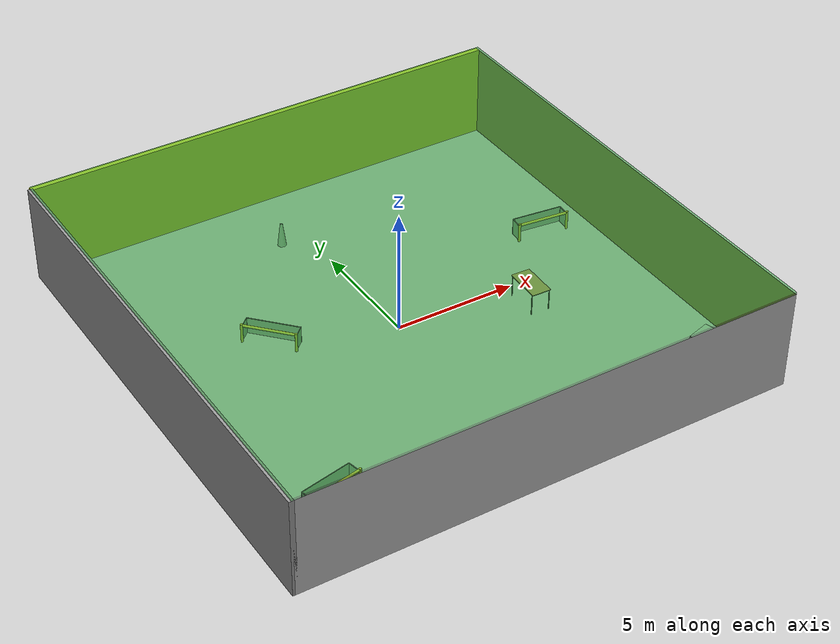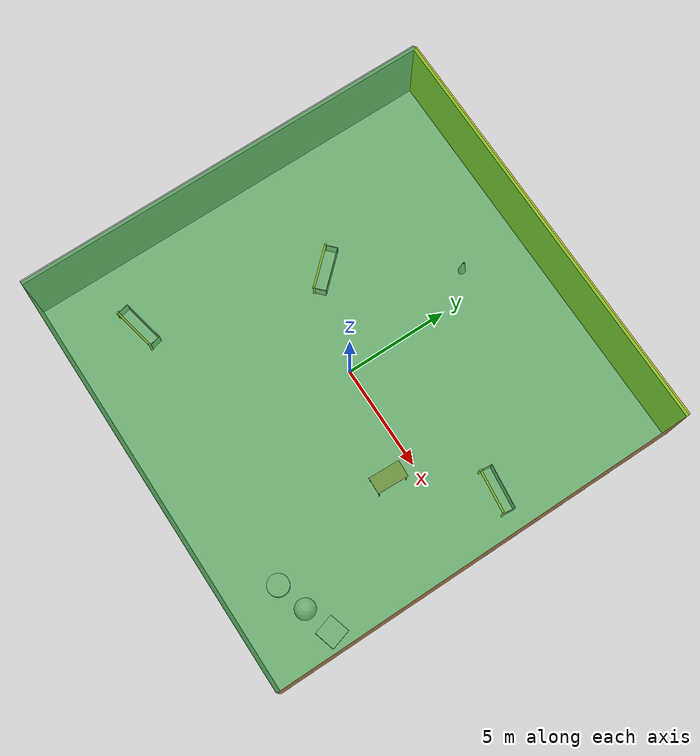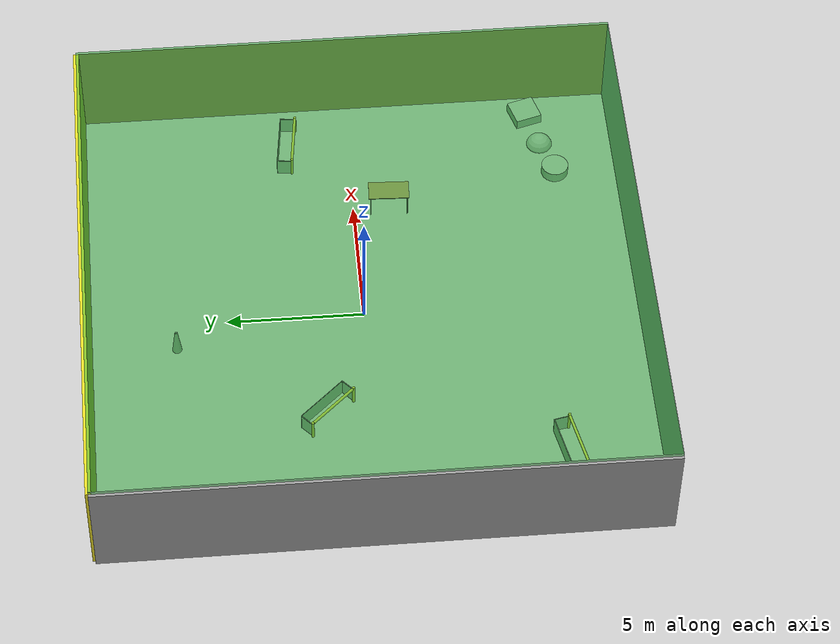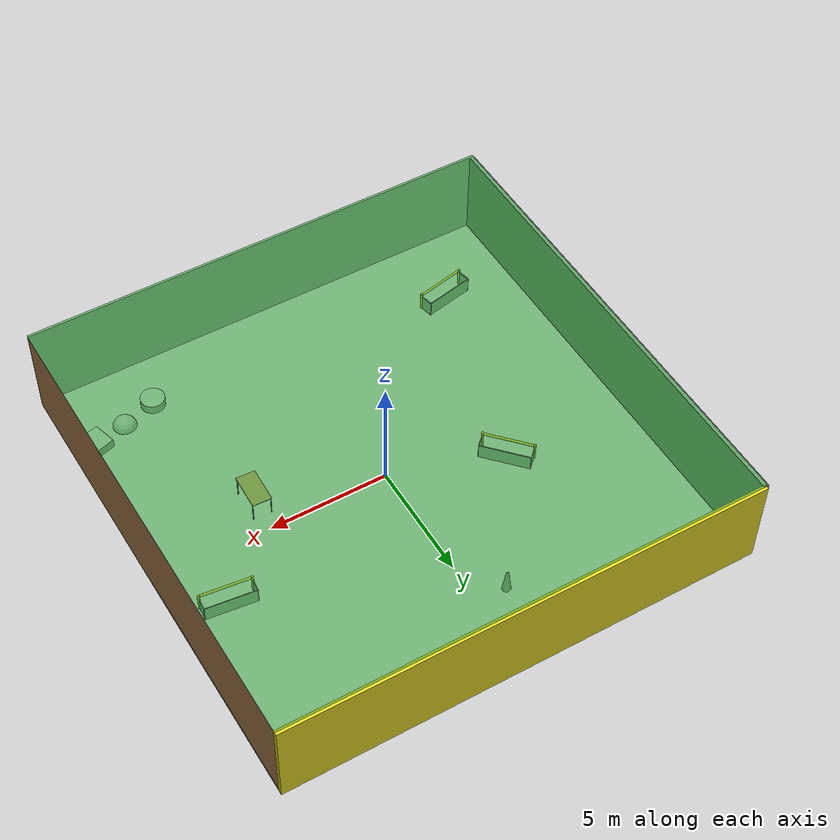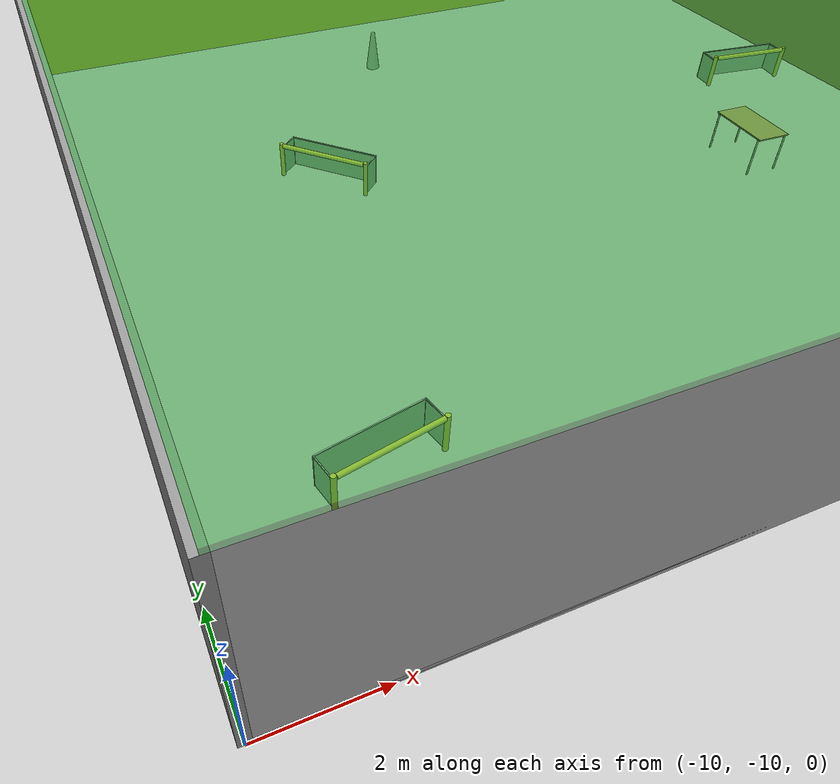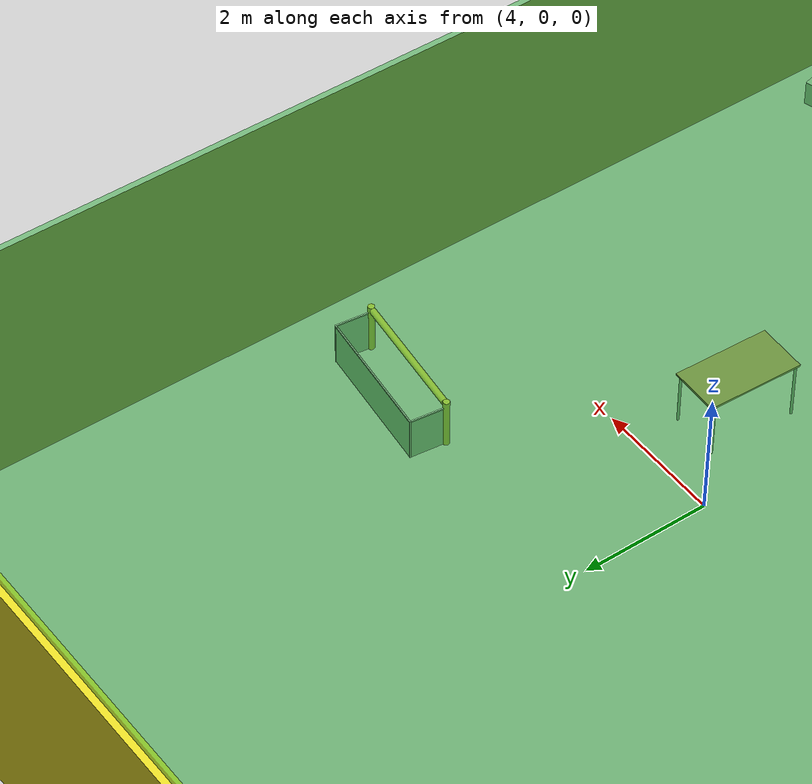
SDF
<sdf version="1.4">
 <world name="default">
  <physics type="ode">
   <max_step_size>0.001</max_step_size>
   <real_time_factor>1</real_time_factor>
   <real_time_update_rate>1000</real_time_update_rate>
   <gravity>0 0 -9.8</gravity>
  </physics>
  <scene><ambient>0.4 0.4 0.4 1</ambient><background>0.7 0.7 0.7 1</background><shadows>1</shadows></scene>
  <model name="Surrounding">
   <static>1</static>
   <link name="Ceiling">
    <collision name="Ceiling_Collision"><geometry><box><size>20 20 0.1</size></box></geometry></collision>
    <visual name="Ceiling_Visual">
     <geometry><box><size>20 20 0.1</size></box></geometry>
     <material>
      <script><uri>file://media/materials/scripts/gazebo.material</uri><name>Gazebo/GreenTransparent</name></script>
     </material>
    </visual>
    <pose>0 0 4.05 0 0 0</pose>
   </link>
   <link name="Wall_South">
    <collision name="Wall_South_Collision">
     <geometry><box><size>20 0 4</size></box></geometry>
     <pose>0 0 2 0 -0 0</pose>
    </collision>
    <visual name="Wall_South_Visual">
     <pose>0 0 2 0 -0 0</pose>
     <geometry><box><size>20 0 4</size></box></geometry>
     <material>
      <script><uri>file://media/materials/scripts/gazebo.material</uri><name>Gazebo/JointAnchor</name></script>
     </material>
    </visual>
    <velocity_decay><linear>0</linear><angular>0</angular></velocity_decay>
    <pose>0 -10 0 0 -0 0</pose>
   </link>
   <link name="Wall_East">
    <collision name="Wall_21_Collision">
     <geometry><box><size>20 0 4</size></box></geometry>
     <pose>0 0 2 0 -0 0</pose>
    </collision>
    <visual name="Wall_21_Visual">
     <pose>0 0 2 0 -0 0</pose>
     <geometry><box><size>20 0 4</size></box></geometry>
     <material>
      <script><uri>file://media/materials/scripts/gazebo.material</uri><name>Gazebo/WoodPallet</name></script>
     </material>
    </visual>
    <velocity_decay><linear>0</linear><angular>0</angular></velocity_decay>
    <pose>10 0 0 0 -0 1.5708</pose>
   </link>
   <link name="Wall_North">
    <collision name="Wall_22_Collision">
     <geometry><box><size>20 0.2 4</size></box></geometry>
     <pose>0 0 2 0 -0 0</pose>
    </collision>
    <visual name="Wall_22_Visual">
     <pose>0 0 2 0 -0 0</pose>
     <geometry><box><size>20 0.2 4</size></box></geometry>
     <material>
      <script><uri>file://media/materials/scripts/gazebo.material</uri><name>Gazebo/Yellow</name></script>
     </material>
    </visual>
    <velocity_decay><linear>0</linear><angular>0</angular></velocity_decay>
    <pose>0 10 0 0 -0 0</pose>
   </link>
   <link name="Wall_West">
    <collision name="Wall_23_Collision">
     <geometry><box><size>20 0.2 4</size></box></geometry>
     <pose>0 0 2 0 -0 0</pose>
    </collision>
    <visual name="Wall_23_Visual">
     <pose>0 0 2 0 -0 0</pose>
     <geometry><box><size>20 0.2 4</size></box></geometry>
     <material>
      <script><uri>file://media/materials/scripts/gazebo.material</uri><name>Gazebo/Grey</name></script>
     </material>
    </visual>
    <velocity_decay><linear>0</linear><angular>0</angular></velocity_decay>
    <pose>-10 0 0 0 0 -1.5708</pose>
   </link>
   <link name="Ground_link">
    <collision name="collision">
     <pose>0 0 .05 0 -0 0</pose>
     <geometry><box><size>20 20 0.1</size></box></geometry>
    </collision>
    <visual name="visual">
     <pose>0 0 .05 0 -0 0</pose>
     <geometry><box><size>20 20 0.1</size></box></geometry>
     <material>
      <script><uri>file://media/materials/scripts/gazebo.material</uri><name>Gazebo/PioneerBody</name></script>
     </material>
    </visual>
   </link>
   <static>1</static>
  </model>
  <spherical_coordinates>
   <surface_model>EARTH_WGS84</surface_model>
   <latitude_deg>0</latitude_deg>
   <longitude_deg>0</longitude_deg>
   <elevation>0</elevation>
   <heading_deg>0</heading_deg>
  </spherical_coordinates>
  <light name="lightball_0" type="diffuse">
   <diffuse>0.8 0.8 0.8 1</diffuse>
   <specular>0.2 0.2 0.2 1</specular>
   <attenuation>
    <range>100</range>
    <constant>0.7</constant>
    <linear>0.01</linear>
    <quadratic>0.001</quadratic>
   </attenuation>
   <direction>-0.5 0.1 -0.9</direction>
   <pose>-3.52107783982 4.67068443613 0.673126585062 0 0 0</pose>
  </light>
  <light name="lightball_1" type="diffuse">
   <diffuse>0.8 0.8 0.8 1</diffuse>
   <specular>0.2 0.2 0.2 1</specular>
   <attenuation>
    <range>100</range>
    <constant>0.7</constant>
    <linear>0.01</linear>
    <quadratic>0.001</quadratic>
   </attenuation>
   <direction>-0.5 0.1 -0.9</direction>
   <pose>0.487251632172 -1.93857423402 3.60547848522 0 0 0</pose>
  </light>
  <light name="lightball_2" type="diffuse">
   <diffuse>0.8 0.8 0.8 1</diffuse>
   <specular>0.2 0.2 0.2 1</specular>
   <attenuation>
    <range>100</range>
    <constant>0.7</constant>
    <linear>0.01</linear>
    <quadratic>0.001</quadratic>
   </attenuation>
   <direction>-0.5 0.1 -0.9</direction>
   <pose>5.42520902832 -1.45535243451 1.65543463159 0 0 0</pose>
  </light>
  <light name="lightball_3" type="diffuse">
   <diffuse>0.8 0.8 0.8 1</diffuse>
   <specular>0.2 0.2 0.2 1</specular>
   <attenuation>
    <range>100</range>
    <constant>0.7</constant>
    <linear>0.01</linear>
    <quadratic>0.001</quadratic>
   </attenuation>
   <direction>-0.5 0.1 -0.9</direction>
   <pose>-5.50004398047 -7.59170630841 3.19905765518 0 0 0</pose>
  </light>
  <light name="lightball_4" type="diffuse">
   <diffuse>0.8 0.8 0.8 1</diffuse>
   <specular>0.2 0.2 0.2 1</specular>
   <attenuation>
    <range>100</range>
    <constant>0.7</constant>
    <linear>0.01</linear>
    <quadratic>0.001</quadratic>
   </attenuation>
   <direction>-0.5 0.1 -0.9</direction>
   <pose>-3.63984360544 7.41672461426 2.07375372387 0 0 0</pose>
  </light>
  <light name="lightball_5" type="diffuse">
   <diffuse>0.8 0.8 0.8 1</diffuse>
   <specular>0.2 0.2 0.2 1</specular>
   <attenuation>
    <range>100</range>
    <constant>0.7</constant>
    <linear>0.01</linear>
    <quadratic>0.001</quadratic>
   </attenuation>
   <direction>-0.5 0.1 -0.9</direction>
   <pose>-1.5956341484 9.11604775637 1.33675708795 0 0 0</pose>
  </light>
  <light name="lightball_6" type="diffuse">
   <diffuse>0.8 0.8 0.8 1</diffuse>
   <specular>0.2 0.2 0.2 1</specular>
   <attenuation>
    <range>100</range>
    <constant>0.7</constant>
    <linear>0.01</linear>
    <quadratic>0.001</quadratic>
   </attenuation>
   <direction>-0.5 0.1 -0.9</direction>
   <pose>7.73583205728 6.94885926466 2.10156685542 0 0 0</pose>
  </light>
  <light name="lightball_7" type="diffuse">
   <diffuse>0.8 0.8 0.8 1</diffuse>
   <specular>0.2 0.2 0.2 1</specular>
   <attenuation>
    <range>100</range>
    <constant>0.7</constant>
    <linear>0.01</linear>
    <quadratic>0.001</quadratic>
   </attenuation>
   <direction>-0.5 0.1 -0.9</direction>
   <pose>9.10397010213 5.55789995773 3.45093133572 0 0 0</pose>
  </light>
  <light name="lightball_8" type="diffuse">
   <diffuse>0.8 0.8 0.8 1</diffuse>
   <specular>0.2 0.2 0.2 1</specular>
   <attenuation>
    <range>100</range>
    <constant>0.7</constant>
    <linear>0.01</linear>
    <quadratic>0.001</quadratic>
   </attenuation>
   <direction>-0.5 0.1 -0.9</direction>
   <pose>7.18440444279 2.54413383281 3.71070038022 0 0 0</pose>
  </light>
  <include>
   <uri>model://robocup_3Dsim_goal</uri>
   <pose>-6.74584282505 -7.02559416296 0 0 0 1.77400713536</pose>
  </include>
  <include>
   <uri>model://robocup_3Dsim_goal</uri>
   <pose>-4.67963957847 1.44921509673 0 0 0 0.744472733848</pose>
  </include>
  <include>
   <uri>model://construction_cone</uri>
   <pose>-1.1662769415 6.8475100963 0 0 0 1.10314048204</pose>
  </include>
  <include><uri>model://table</uri><pose>4.99356101136 -1.32318908454 0 0 0 1.53293512515</pose></include>
  <include>
   <uri>model://textured_shapes</uri>
   <pose>7.63192456161 -7.30128268962 0 0 0 1.85471113008</pose>
  </include>
  <include>
   <uri>model://robocup_3Dsim_goal</uri>
   <pose>7.93965311211 2.05118462458 0 0 0 1.45565646854</pose>
  </include>
 </world>
</sdf>

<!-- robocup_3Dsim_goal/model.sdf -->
<sdf version="1.5">
  <model name="robocup_3d_goal">
    <static>true</static>
    <link name="left_post">
      <pose>0 1.05 0.45 0 0 0</pose>
      <collision name="collision">
        <geometry>
          <cylinder>
            <radius>0.05</radius>
            <length>0.9</length>
          </cylinder>
        </geometry>
      </collision>
      <visual name="visual">
        <geometry>
          <cylinder>
            <radius>0.05</radius>
            <length>0.9</length>
          </cylinder>
        </geometry>
        <material>
          <script>
            <uri>file://media/materials/scripts/gazebo.material</uri>
            <name>Gazebo/ZincYellow</name>
          </script>
        </material>
      </visual>
    </link>
    <link name="left_support_horiz_lower">
      <pose>0.30 1.05 0.01 0 0 0</pose>
      <collision name="collision">
        <geometry>
          <box>
            <size>0.50 0.02 0.02</size>
          </box>
        </geometry>
      </collision>
      <visual name="visual">
        <geometry>
          <box>
            <size>0.50 0.02 0.02</size>
          </box>
        </geometry>
        <material>
          <script>
            <uri>file://media/materials/scripts/gazebo.material</uri>
            <name>Gazebo/White</name>
          </script>
        </material>
      </visual>
    </link>
    <link name="left_support_horiz_upper">
      <pose>0.30 1.05 0.79 0 0 0</pose>
      <collision name="collision">
        <geometry>
          <box>
            <size>0.50 0.02 0.02</size>
          </box>
        </geometry>
      </collision>
      <visual name="visual">
        <geometry>
          <box>
            <size>0.50 0.02 0.02</size>
          </box>
        </geometry>
        <material>
          <script>
            <uri>file://media/materials/scripts/gazebo.material</uri>
            <name>Gazebo/White</name>
          </script>
        </material>
      </visual>
    </link>
    <link name="left_support_vertical">
      <pose>0.56 1.05 0.4 0 1.5708 0</pose>
      <collision name="collision">
        <geometry>
          <box>
            <size>0.80 0.02 0.02</size>
          </box>
        </geometry>
      </collision>
      <visual name="visual">
        <geometry>
          <box>
            <size>0.80 0.02 0.02</size>
          </box>
        </geometry>
        <material>
          <script>
            <uri>file://media/materials/scripts/gazebo.material</uri>
            <name>Gazebo/White</name>
          </script>
        </material>
      </visual>
    </link>
    <link name="right_support_horiz_lower">
      <pose>0.30 -1.05 0.01 0 0 0</pose>
      <collision name="collision">
        <geometry>
          <box>
            <size>0.50 0.02 0.02</size>
          </box>
        </geometry>
      </collision>
      <visual name="visual">
        <geometry>
          <box>
            <size>0.50 0.02 0.02</size>
          </box>
        </geometry>
        <material>
          <script>
            <uri>file://media/materials/scripts/gazebo.material</uri>
            <name>Gazebo/White</name>
          </script>
        </material>
      </visual>
    </link>
    <link name="right_support_horiz_upper">
      <pose>0.30 -1.05 0.79 0 0 0</pose>
      <collision name="collision">
        <geometry>
          <box>
            <size>0.50 0.02 0.02</size>
          </box>
        </geometry>
      </collision>
      <visual name="visual">
        <geometry>
          <box>
            <size>0.50 0.02 0.02</size>
          </box>
        </geometry>
        <material>
          <script>
            <uri>file://media/materials/scripts/gazebo.material</uri>
            <name>Gazebo/White</name>
          </script>
        </material>
      </visual>
    </link>
    <link name="right_support_vertical">
      <pose>0.56 -1.05 0.4 0 1.5708 0</pose>
      <collision name="collision">
        <geometry>
          <box>
            <size>0.80 0.02 0.02</size>
          </box>
        </geometry>
      </collision>
      <visual name="visual">
        <geometry>
          <box>
            <size>0.80 0.02 0.02</size>
          </box>
        </geometry>
        <material>
          <script>
            <uri>file://media/materials/scripts/gazebo.material</uri>
            <name>Gazebo/White</name>
          </script>
        </material>
      </visual>
    </link>
    <link name="center_support_horiz_lower">
      <pose>0.56 0 0.01 0 1.5708 0</pose>
      <collision name="collision">
        <geometry>
          <box>
            <size>0.02 2.08 0.02</size>
          </box>
        </geometry>
      </collision>
      <visual name="visual">
        <geometry>
          <box>
            <size>0.02 2.08 0.02</size>
          </box>
        </geometry>
        <material>
          <script>
            <uri>file://media/materials/scripts/gazebo.material</uri>
            <name>Gazebo/White</name>
          </script>
        </material>
      </visual>
    </link>
    <link name="center_support_horiz_upper">
      <pose>0.56 0 0.79 0 1.5708 0</pose>
      <collision name="collision">
        <geometry>
          <box>
            <size>0.02 2.08 0.02</size>
          </box>
        </geometry>
      </collision>
      <visual name="visual">
        <geometry>
          <box>
            <size>0.02 2.08 0.02</size>
          </box>
        </geometry>
        <material>
          <script>
            <uri>file://media/materials/scripts/gazebo.material</uri>
            <name>Gazebo/White</name>
          </script>
        </material>
      </visual>
    </link>
    <link name="right_post">
      <pose>0 -1.05 0.45 0 0 0</pose>
      <collision name="collision">
        <geometry>
          <cylinder>
            <radius>0.05</radius>
            <length>0.9</length>
          </cylinder>
        </geometry>
      </collision>
      <visual name="visual">
        <geometry>
          <cylinder>
            <radius>0.05</radius>
            <length>0.9</length>
          </cylinder>
        </geometry>
        <material>
          <script>
            <uri>file://media/materials/scripts/gazebo.material</uri>
            <name>Gazebo/ZincYellow</name>
          </script>
        </material>
      </visual>
    </link>
    <link name="crossbar">
      <pose>0 0 0.85 1.57 1.57 0</pose>
      <collision name="collision">
        <geometry>
          <cylinder>
            <radius>0.05</radius>
            <length>2.0</length>
          </cylinder>
        </geometry>
      </collision>
      <visual name="visual">
        <geometry>
          <cylinder>
            <radius>0.05</radius>
            <length>2.0</length>
          </cylinder>
        </geometry>
        <material>
          <script>
            <uri>file://media/materials/scripts/gazebo.material</uri>
            <name>Gazebo/ZincYellow</name>
          </script>
        </material>
      </visual>
    </link>
    <link name="center_net">
      <pose>0.56 0 0.40 0 0 0</pose>
      <collision name="collision">
        <geometry>
          <box>
            <size>0.01 2.1 0.80</size>
          </box>
        </geometry>
      </collision>
      <visual name="visual">
        <geometry>
          <box>
            <size>0.01 2.1 0.80</size>
          </box>
        </geometry>
        <material>
          <script>
            <uri>model://../model_source/models/robocup09_spl_field/materials/scripts/</uri>
            <uri>model://../model_source/models/robocup09_spl_field/materials/textures/</uri>
            <name>RoboCup/Net</name>
          </script>
        </material>
      </visual>
    </link>
    <link name="left_net">
      <pose>0.30 1.05 0.40 0 0 0</pose>
      <collision name="collision">
        <geometry>
          <box>
            <size>0.50 0.01 0.76</size>
          </box>
        </geometry>
      </collision>
      <visual name="visual">
        <geometry>
          <box>
            <size>0.50 0.01 0.76</size>
          </box>
        </geometry>
        <material>
          <script>
            <uri>model://../model_source/models/robocup09_spl_field/materials/scripts/</uri>
            <uri>model://../model_source/models/robocup09_spl_field/materials/textures/</uri>
            <name>RoboCup/Net</name>
          </script>
        </material>
      </visual>
    </link>
    <link name="right_net">
      <pose>0.30 -1.05 0.40 0 0 0</pose>
      <collision name="collision">
        <geometry>
          <box>
            <size>0.50 0.01 0.76</size>
          </box>
        </geometry>
      </collision>
      <visual name="visual">
        <geometry>
          <box>
            <size>0.50 0.01 0.76</size>
          </box>
        </geometry>
        <material>
          <script>
            <uri>model://../model_source/models/robocup09_spl_field/materials/scripts/</uri>
            <uri>model://../model_source/models/robocup09_spl_field/materials/textures/</uri>
            <name>RoboCup/Net</name>
          </script>
        </material>
      </visual>
    </link>
  </model>
</sdf>

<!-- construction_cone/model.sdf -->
<sdf version="1.5">
  <model name="Construction Cone">
    <link name="link">
      <collision name="collision">
        <geometry>
          <mesh>
            <scale>10 10 10</scale>
            <uri>file://isr-testbed/construction_cone/meshes/construction_cone.dae</uri>
          </mesh>
        </geometry>
      </collision>
      <visual name="visual">
        <geometry>
          <mesh>
            <scale>10 10 10</scale>
            <uri>file://isr-testbed/construction_cone/meshes/construction_cone.dae</uri>
          </mesh>
        </geometry>
      </visual>
    </link>
  </model>
</sdf>

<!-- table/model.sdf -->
<sdf version="1.5">
  <model name="table">
    <static>true</static>
    <link name="link">
      <collision name="surface">
        <pose>0 0 1.0 0 0 0</pose>
        <geometry>
          <box>
            <size>1.5 0.8 0.03</size>
          </box>
        </geometry>
        <surface>
          <friction>
            <ode>
              <mu>0.6</mu>
              <mu2>0.6</mu2>
            </ode>
          </friction>
        </surface>
      </collision>
      <visual name="visual1">
        <pose>0 0 1.0 0 0 0</pose>
        <geometry>
          <box>
            <size>1.5 0.8 0.03</size>
          </box>
        </geometry>
        <material>
          <script>
            <uri>model://media/materials/scripts/gazebo.material</uri>
            <name>Gazebo/Wood</name>
          </script>
        </material>
      </visual>
      <collision name="front_left_leg">
        <pose>0.68 0.38 0.5 0 0 0</pose>
        <geometry>
          <cylinder>
            <radius>0.02</radius>
            <length>1.0</length>
          </cylinder>
        </geometry>
      </collision>
      <visual name="front_left_leg">
        <pose>0.68 0.38 0.5 0 0 0</pose>
        <geometry>
          <cylinder>
            <radius>0.02</radius>
            <length>1.0</length>
          </cylinder>
        </geometry>
        <material>
          <script>
            <uri>model://media/materials/scripts/gazebo.material</uri>
            <name>Gazebo/Grey</name>
          </script>
        </material>
      </visual>
      <collision name="front_right_leg">
        <pose>0.68 -0.38 0.5 0 0 0</pose>
        <geometry>
          <cylinder>
            <radius>0.02</radius>
            <length>1.0</length>
          </cylinder>
        </geometry>
      </collision>
      <visual name="front_right_leg">
        <pose>0.68 -0.38 0.5 0 0 0</pose>
        <geometry>
          <cylinder>
            <radius>0.02</radius>
            <length>1.0</length>
          </cylinder>
        </geometry>
        <material>
          <script>
            <uri>model://media/materials/scripts/gazebo.material</uri>
            <name>Gazebo/Grey</name>
          </script>
        </material>
      </visual>
      <collision name="back_right_leg">
        <pose>-0.68 -0.38 0.5 0 0 0</pose>
        <geometry>
          <cylinder>
            <radius>0.02</radius>
            <length>1.0</length>
          </cylinder>
        </geometry>
      </collision>
      <visual name="back_right_leg">
        <pose>-0.68 -0.38 0.5 0 0 0</pose>
        <geometry>
          <cylinder>
            <radius>0.02</radius>
            <length>1.0</length>
          </cylinder>
        </geometry>
        <material>
          <script>
            <uri>model://media/materials/scripts/gazebo.material</uri>
            <name>Gazebo/Grey</name>
          </script>
        </material>
      </visual>
      <collision name="back_left_leg">
        <pose>-0.68 0.38 0.5 0 0 0</pose>
        <geometry>
          <cylinder>
            <radius>0.02</radius>
            <length>1.0</length>
          </cylinder>
        </geometry>
      </collision>
      <visual name="back_left_leg">
        <pose>-0.68 0.38 0.5 0 0 0</pose>
        <geometry>
          <cylinder>
            <radius>0.02</radius>
            <length>1.0</length>
          </cylinder>
        </geometry>
        <material>
          <script>
            <uri>model://media/materials/scripts/gazebo.material</uri>
            <name>Gazebo/Grey</name>
          </script>
        </material>
      </visual>
    </link>
  </model>
</sdf>

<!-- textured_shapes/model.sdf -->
<sdf version="1.6">
  <model name="textured_shapes">
    <pose>0 0 0.5 0 0 0</pose>
    <link name="box">
      <pose>0 -1.5 0 0 0 0</pose>
      <collision name="collision">
        <geometry>
          <box>
            <size>1 1 1</size>
          </box>
        </geometry>
      </collision>
      <visual name="visual">
        <geometry>
          <box>
            <size>1 1 1</size>
          </box>
        </geometry>
        <material>
          <script>
            <uri>model://../model_source/models/textured_shapes/materials/scripts</uri>
            <uri>model://../model_source/models/textured_shapes/materials/textures</uri>
            <name>TexturedShape/Squares</name>
          </script>
        </material>
      </visual>
    </link>
    <link name="sphere">
      <collision name="collision">
        <geometry>
          <sphere>
            <radius>0.5</radius>
          </sphere>
        </geometry>
      </collision>
      <visual name="visual">
        <geometry>
          <sphere>
            <radius>0.5</radius>
          </sphere>
        </geometry>
        <material>
          <script>
            <uri>model://../model_source/models/textured_shapes/materials/scripts</uri>
            <uri>model://../model_source/models/textured_shapes/materials/textures</uri>
            <name>TexturedShape/Squares</name>
          </script>
        </material>
      </visual>
    </link>
    <link name="cylinder">
      <pose>0 1.5 0 0 0 0</pose>
      <collision name="collision">
        <geometry>
          <cylinder>
            <radius>0.5</radius>
            <length>1</length>
          </cylinder>
        </geometry>
      </collision>
      <visual name="visual">
        <geometry>
          <cylinder>
            <radius>0.5</radius>
            <length>1</length>
          </cylinder>
        </geometry>
        <material>
          <script>
            <uri>model://../model_source/models/textured_shapes/materials/scripts</uri>
            <uri>model://../model_source/models/textured_shapes/materials/textures</uri>
            <name>TexturedShape/Squares</name>
          </script>
        </material>
      </visual>
    </link>
  </model>
</sdf>
